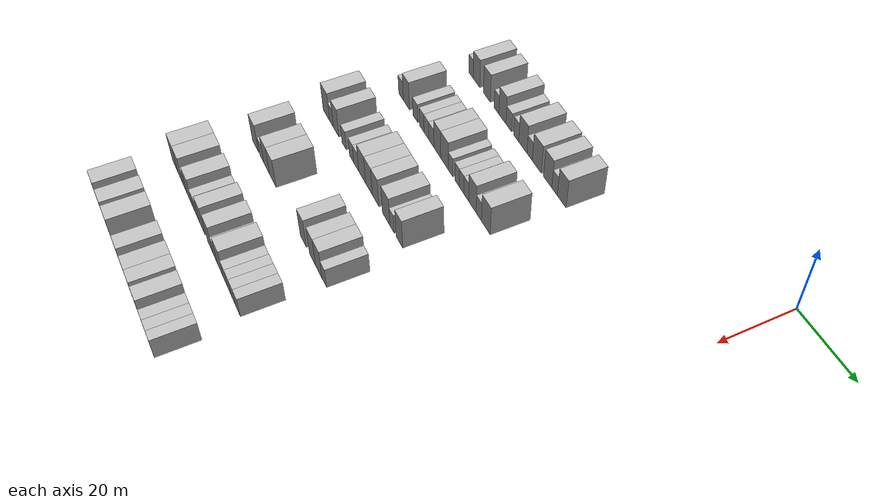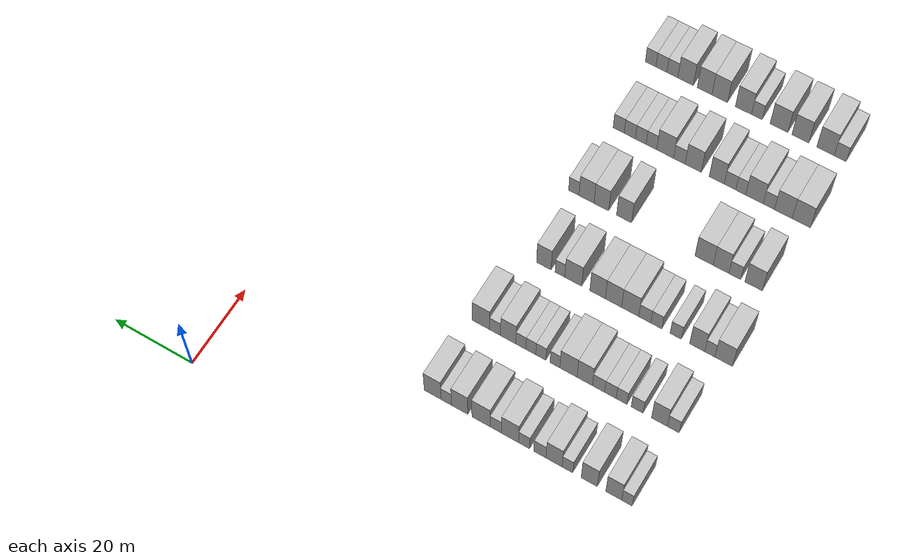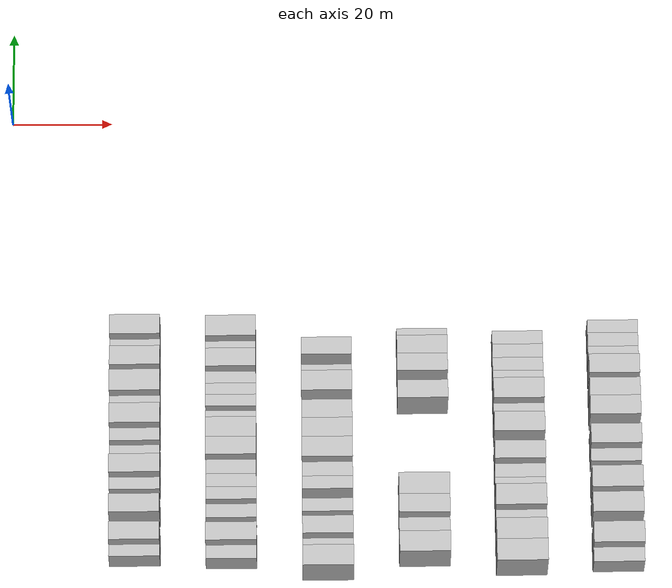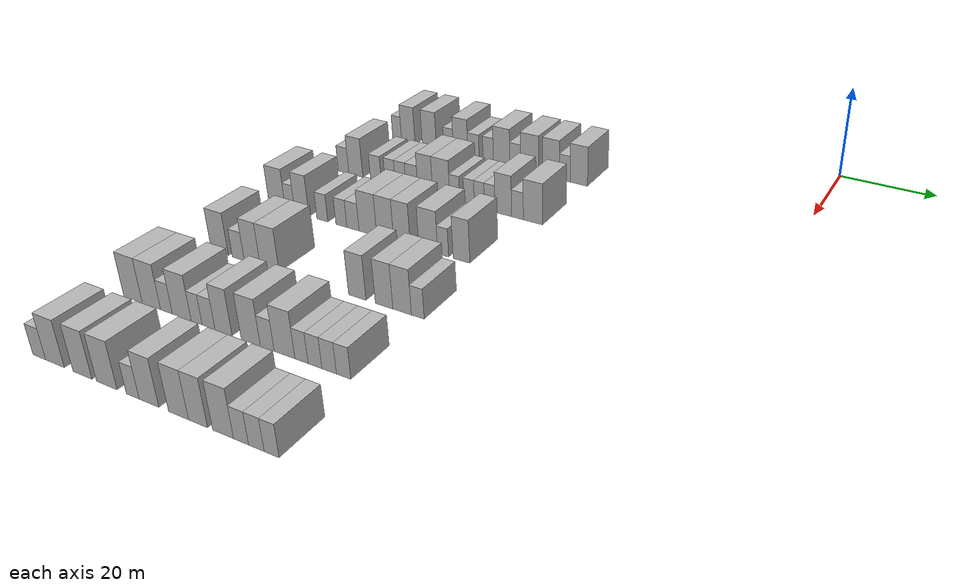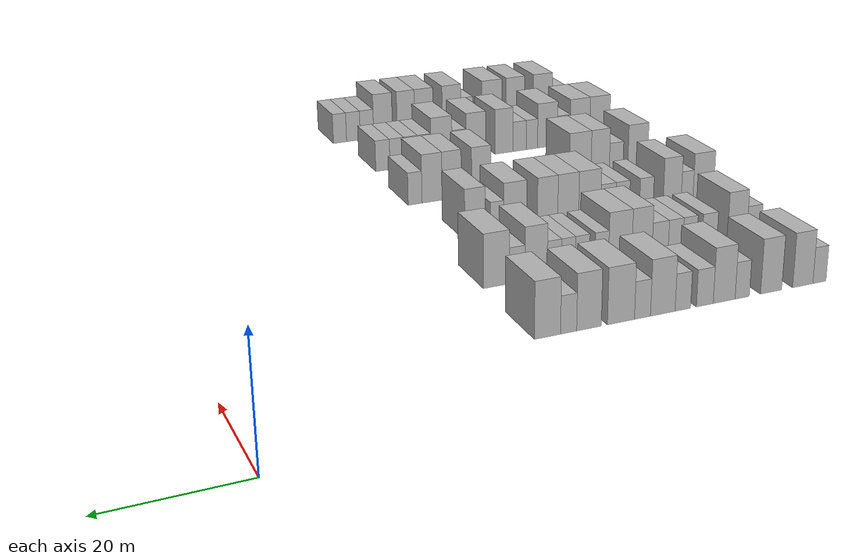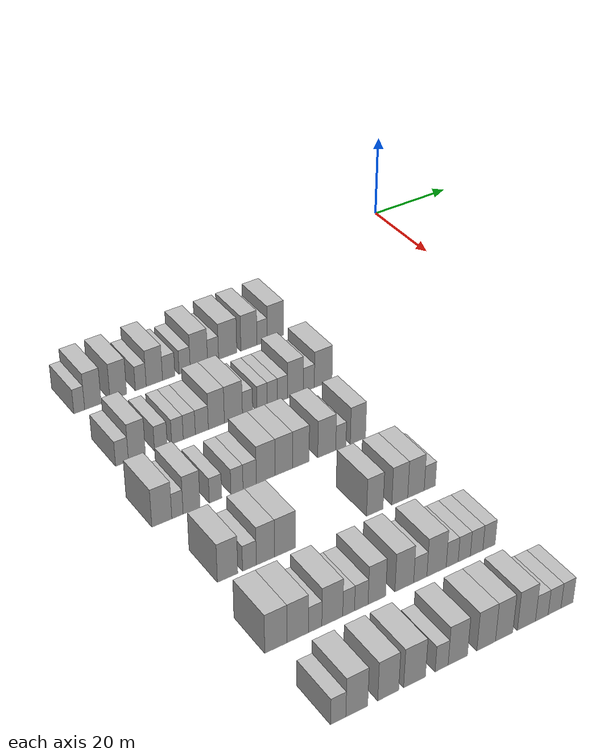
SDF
<sdf version="1.6">
 <world name="default">
  <model name="building_62">
   <static>1</static>
   <pose>25.0000 -94.1520 0 0.000000 0.000000 0.000000</pose>
   <link name="link">
    <pose>0 0 3.00 0 0 0</pose>
    <collision name="collision"><geometry><box><size>10.0000 2.4363 6.0000</size></box></geometry></collision>
    <visual name="visual">
     <cast_shadows>0</cast_shadows>
     <geometry><box><size>10.0000 2.4363 6.0000</size></box></geometry>
     <material>
      <script>
       <uri>model://HANNAS_wall/materials/scripts</uri>
       <uri>model://HANNAS_wall/materials/textures</uri>
       <name>vrc/HANNAS_wall</name>
      </script>
     </material>
    </visual>
   </link>
  </model>
  <model name="building_63">
   <static>1</static>
   <pose>25.0000 -91.0666 0 0.000000 0.000000 0.000000</pose>
   <link name="link">
    <pose>0 0 4.50 0 0 0</pose>
    <collision name="collision"><geometry><box><size>10.0000 3.7346 9.0000</size></box></geometry></collision>
    <visual name="visual">
     <cast_shadows>0</cast_shadows>
     <geometry><box><size>10.0000 3.7346 9.0000</size></box></geometry>
     <material>
      <script>
       <uri>model://HANNAS_wall/materials/scripts</uri>
       <uri>model://HANNAS_wall/materials/textures</uri>
       <name>vrc/HANNAS_wall</name>
      </script>
     </material>
    </visual>
   </link>
  </model>
  <model name="building_64">
   <static>1</static>
   <pose>25.0000 -85.2861 0 0.000000 0.000000 0.000000</pose>
   <link name="link">
    <pose>0 0 4.50 0 0 0</pose>
    <collision name="collision"><geometry><box><size>10.0000 3.8263 9.0000</size></box></geometry></collision>
    <visual name="visual">
     <cast_shadows>0</cast_shadows>
     <geometry><box><size>10.0000 3.8263 9.0000</size></box></geometry>
     <material>
      <script>
       <uri>model://HANNAS_wall/materials/scripts</uri>
       <uri>model://HANNAS_wall/materials/textures</uri>
       <name>vrc/HANNAS_wall</name>
      </script>
     </material>
    </visual>
   </link>
  </model>
  <model name="building_65">
   <static>1</static>
   <pose>25.0000 -80.1051 0 0.000000 0.000000 0.000000</pose>
   <link name="link">
    <pose>0 0 3.00 0 0 0</pose>
    <collision name="collision"><geometry><box><size>10.0000 2.5358 6.0000</size></box></geometry></collision>
    <visual name="visual">
     <cast_shadows>0</cast_shadows>
     <geometry><box><size>10.0000 2.5358 6.0000</size></box></geometry>
     <material>
      <script>
       <uri>model://HANNAS_wall/materials/scripts</uri>
       <uri>model://HANNAS_wall/materials/textures</uri>
       <name>vrc/HANNAS_wall</name>
      </script>
     </material>
    </visual>
   </link>
  </model>
  <model name="building_66">
   <static>1</static>
   <pose>25.0000 -76.9200 0 0.000000 0.000000 0.000000</pose>
   <link name="link">
    <pose>0 0 4.50 0 0 0</pose>
    <collision name="collision"><geometry><box><size>10.0000 3.8344 9.0000</size></box></geometry></collision>
    <visual name="visual">
     <cast_shadows>0</cast_shadows>
     <geometry><box><size>10.0000 3.8344 9.0000</size></box></geometry>
     <material>
      <script>
       <uri>model://HANNAS_wall/materials/scripts</uri>
       <uri>model://HANNAS_wall/materials/textures</uri>
       <name>vrc/HANNAS_wall</name>
      </script>
     </material>
    </visual>
   </link>
  </model>
  <model name="building_67">
   <static>1</static>
   <pose>25.0000 -73.5407 0 0.000000 0.000000 0.000000</pose>
   <link name="link">
    <pose>0 0 3.00 0 0 0</pose>
    <collision name="collision"><geometry><box><size>10.0000 2.9241 6.0000</size></box></geometry></collision>
    <visual name="visual">
     <cast_shadows>0</cast_shadows>
     <geometry><box><size>10.0000 2.9241 6.0000</size></box></geometry>
     <material>
      <script>
       <uri>model://HANNAS_wall/materials/scripts</uri>
       <uri>model://HANNAS_wall/materials/textures</uri>
       <name>vrc/HANNAS_wall</name>
      </script>
     </material>
    </visual>
   </link>
  </model>
  <model name="building_68">
   <static>1</static>
   <pose>25.0000 -69.7511 0 0.000000 0.000000 0.000000</pose>
   <link name="link">
    <pose>0 0 3.00 0 0 0</pose>
    <collision name="collision"><geometry><box><size>10.0000 2.6551 6.0000</size></box></geometry></collision>
    <visual name="visual">
     <cast_shadows>0</cast_shadows>
     <geometry><box><size>10.0000 2.6551 6.0000</size></box></geometry>
     <material>
      <script>
       <uri>model://HANNAS_wall/materials/scripts</uri>
       <uri>model://HANNAS_wall/materials/textures</uri>
       <name>vrc/HANNAS_wall</name>
      </script>
     </material>
    </visual>
   </link>
  </model>
  <model name="building_69">
   <static>1</static>
   <pose>25.0000 -66.3393 0 0.000000 0.000000 0.000000</pose>
   <link name="link">
    <pose>0 0 4.50 0 0 0</pose>
    <collision name="collision"><geometry><box><size>10.0000 4.1685 9.0000</size></box></geometry></collision>
    <visual name="visual">
     <cast_shadows>0</cast_shadows>
     <geometry><box><size>10.0000 4.1685 9.0000</size></box></geometry>
     <material>
      <script>
       <uri>model://HANNAS_wall/materials/scripts</uri>
       <uri>model://HANNAS_wall/materials/textures</uri>
       <name>vrc/HANNAS_wall</name>
      </script>
     </material>
    </visual>
   </link>
  </model>
  <model name="building_70">
   <static>1</static>
   <pose>25.0000 -62.9199 0 0.000000 0.000000 0.000000</pose>
   <link name="link">
    <pose>0 0 3.00 0 0 0</pose>
    <collision name="collision"><geometry><box><size>10.0000 2.6703 6.0000</size></box></geometry></collision>
    <visual name="visual">
     <cast_shadows>0</cast_shadows>
     <geometry><box><size>10.0000 2.6703 6.0000</size></box></geometry>
     <material>
      <script>
       <uri>model://HANNAS_wall/materials/scripts</uri>
       <uri>model://HANNAS_wall/materials/textures</uri>
       <name>vrc/HANNAS_wall</name>
      </script>
     </material>
    </visual>
   </link>
  </model>
  <model name="building_71">
   <static>1</static>
   <pose>25.0000 -59.3494 0 0.000000 0.000000 0.000000</pose>
   <link name="link">
    <pose>0 0 4.50 0 0 0</pose>
    <collision name="collision"><geometry><box><size>10.0000 4.4707 9.0000</size></box></geometry></collision>
    <visual name="visual">
     <cast_shadows>0</cast_shadows>
     <geometry><box><size>10.0000 4.4707 9.0000</size></box></geometry>
     <material>
      <script>
       <uri>model://HANNAS_wall/materials/scripts</uri>
       <uri>model://HANNAS_wall/materials/textures</uri>
       <name>vrc/HANNAS_wall</name>
      </script>
     </material>
    </visual>
   </link>
  </model>
  <model name="building_72">
   <static>1</static>
   <pose>25.0000 -54.1172 0 0.000000 0.000000 0.000000</pose>
   <link name="link">
    <pose>0 0 4.50 0 0 0</pose>
    <collision name="collision"><geometry><box><size>10.0000 3.9937 9.0000</size></box></geometry></collision>
    <visual name="visual">
     <cast_shadows>0</cast_shadows>
     <geometry><box><size>10.0000 3.9937 9.0000</size></box></geometry>
     <material>
      <script>
       <uri>model://HANNAS_wall/materials/scripts</uri>
       <uri>model://HANNAS_wall/materials/textures</uri>
       <name>vrc/HANNAS_wall</name>
      </script>
     </material>
    </visual>
   </link>
  </model>
  <model name="building_73">
   <static>1</static>
   <pose>25.0000 -50.8327 0 0.000000 0.000000 0.000000</pose>
   <link name="link">
    <pose>0 0 3.00 0 0 0</pose>
    <collision name="collision"><geometry><box><size>10.0000 2.5753 6.0000</size></box></geometry></collision>
    <visual name="visual">
     <cast_shadows>0</cast_shadows>
     <geometry><box><size>10.0000 2.5753 6.0000</size></box></geometry>
     <material>
      <script>
       <uri>model://HANNAS_wall/materials/scripts</uri>
       <uri>model://HANNAS_wall/materials/textures</uri>
       <name>vrc/HANNAS_wall</name>
      </script>
     </material>
    </visual>
   </link>
  </model>
  <model name="building_74">
   <static>1</static>
   <pose>25.0000 -47.4837 0 0.000000 0.000000 0.000000</pose>
   <link name="link">
    <pose>0 0 4.50 0 0 0</pose>
    <collision name="collision"><geometry><box><size>10.0000 4.1226 9.0000</size></box></geometry></collision>
    <visual name="visual">
     <cast_shadows>0</cast_shadows>
     <geometry><box><size>10.0000 4.1226 9.0000</size></box></geometry>
     <material>
      <script>
       <uri>model://HANNAS_wall/materials/scripts</uri>
       <uri>model://HANNAS_wall/materials/textures</uri>
       <name>vrc/HANNAS_wall</name>
      </script>
     </material>
    </visual>
   </link>
  </model>
  <model name="building_228">
   <static>1</static>
   <pose>44.0000 -94.6263 0 0.000000 0.000000 0.000000</pose>
   <link name="link">
    <pose>0 0 3.00 0 0 0</pose>
    <collision name="collision"><geometry><box><size>10.0000 2.8032 6.0000</size></box></geometry></collision>
    <visual name="visual">
     <cast_shadows>0</cast_shadows>
     <geometry><box><size>10.0000 2.8032 6.0000</size></box></geometry>
     <material>
      <script>
       <uri>model://HANNAS_wall/materials/scripts</uri>
       <uri>model://HANNAS_wall/materials/textures</uri>
       <name>vrc/HANNAS_wall</name>
      </script>
     </material>
    </visual>
   </link>
  </model>
  <model name="building_229">
   <static>1</static>
   <pose>44.0000 -91.3469 0 0.000000 0.000000 0.000000</pose>
   <link name="link">
    <pose>0 0 4.50 0 0 0</pose>
    <collision name="collision"><geometry><box><size>10.0000 3.7555 9.0000</size></box></geometry></collision>
    <visual name="visual">
     <cast_shadows>0</cast_shadows>
     <geometry><box><size>10.0000 3.7555 9.0000</size></box></geometry>
     <material>
      <script>
       <uri>model://HANNAS_wall/materials/scripts</uri>
       <uri>model://HANNAS_wall/materials/textures</uri>
       <name>vrc/HANNAS_wall</name>
      </script>
     </material>
    </visual>
   </link>
  </model>
  <model name="building_230">
   <static>1</static>
   <pose>44.0000 -86.0438 0 0.000000 0.000000 0.000000</pose>
   <link name="link">
    <pose>0 0 3.00 0 0 0</pose>
    <collision name="collision"><geometry><box><size>10.0000 2.8507 6.0000</size></box></geometry></collision>
    <visual name="visual">
     <cast_shadows>0</cast_shadows>
     <geometry><box><size>10.0000 2.8507 6.0000</size></box></geometry>
     <material>
      <script>
       <uri>model://HANNAS_wall/materials/scripts</uri>
       <uri>model://HANNAS_wall/materials/textures</uri>
       <name>vrc/HANNAS_wall</name>
      </script>
     </material>
    </visual>
   </link>
  </model>
  <model name="building_231">
   <static>1</static>
   <pose>44.0000 -82.3161 0 0.000000 0.000000 0.000000</pose>
   <link name="link">
    <pose>0 0 3.00 0 0 0</pose>
    <collision name="collision"><geometry><box><size>10.0000 2.6048 6.0000</size></box></geometry></collision>
    <visual name="visual">
     <cast_shadows>0</cast_shadows>
     <geometry><box><size>10.0000 2.6048 6.0000</size></box></geometry>
     <material>
      <script>
       <uri>model://HANNAS_wall/materials/scripts</uri>
       <uri>model://HANNAS_wall/materials/textures</uri>
       <name>vrc/HANNAS_wall</name>
      </script>
     </material>
    </visual>
   </link>
  </model>
  <model name="building_232">
   <static>1</static>
   <pose>44.0000 -79.6428 0 0.000000 0.000000 0.000000</pose>
   <link name="link">
    <pose>0 0 3.00 0 0 0</pose>
    <collision name="collision"><geometry><box><size>10.0000 2.7419 6.0000</size></box></geometry></collision>
    <visual name="visual">
     <cast_shadows>0</cast_shadows>
     <geometry><box><size>10.0000 2.7419 6.0000</size></box></geometry>
     <material>
      <script>
       <uri>model://HANNAS_wall/materials/scripts</uri>
       <uri>model://HANNAS_wall/materials/textures</uri>
       <name>vrc/HANNAS_wall</name>
      </script>
     </material>
    </visual>
   </link>
  </model>
  <model name="building_233">
   <static>1</static>
   <pose>44.0000 -76.7818 0 0.000000 0.000000 0.000000</pose>
   <link name="link">
    <pose>0 0 3.00 0 0 0</pose>
    <collision name="collision"><geometry><box><size>10.0000 2.9800 6.0000</size></box></geometry></collision>
    <visual name="visual">
     <cast_shadows>0</cast_shadows>
     <geometry><box><size>10.0000 2.9800 6.0000</size></box></geometry>
     <material>
      <script>
       <uri>model://HANNAS_wall/materials/scripts</uri>
       <uri>model://HANNAS_wall/materials/textures</uri>
       <name>vrc/HANNAS_wall</name>
      </script>
     </material>
    </visual>
   </link>
  </model>
  <model name="building_234">
   <static>1</static>
   <pose>44.0000 -73.4351 0 0.000000 0.000000 0.000000</pose>
   <link name="link">
    <pose>0 0 4.50 0 0 0</pose>
    <collision name="collision"><geometry><box><size>10.0000 3.7135 9.0000</size></box></geometry></collision>
    <visual name="visual">
     <cast_shadows>0</cast_shadows>
     <geometry><box><size>10.0000 3.7135 9.0000</size></box></geometry>
     <material>
      <script>
       <uri>model://HANNAS_wall/materials/scripts</uri>
       <uri>model://HANNAS_wall/materials/textures</uri>
       <name>vrc/HANNAS_wall</name>
      </script>
     </material>
    </visual>
   </link>
  </model>
  <model name="building_235">
   <static>1</static>
   <pose>44.0000 -69.4809 0 0.000000 0.000000 0.000000</pose>
   <link name="link">
    <pose>0 0 4.50 0 0 0</pose>
    <collision name="collision"><geometry><box><size>10.0000 4.1949 9.0000</size></box></geometry></collision>
    <visual name="visual">
     <cast_shadows>0</cast_shadows>
     <geometry><box><size>10.0000 4.1949 9.0000</size></box></geometry>
     <material>
      <script>
       <uri>model://HANNAS_wall/materials/scripts</uri>
       <uri>model://HANNAS_wall/materials/textures</uri>
       <name>vrc/HANNAS_wall</name>
      </script>
     </material>
    </visual>
   </link>
  </model>
  <model name="building_236">
   <static>1</static>
   <pose>44.0000 -66.1765 0 0.000000 0.000000 0.000000</pose>
   <link name="link">
    <pose>0 0 3.00 0 0 0</pose>
    <collision name="collision"><geometry><box><size>10.0000 2.4138 6.0000</size></box></geometry></collision>
    <visual name="visual">
     <cast_shadows>0</cast_shadows>
     <geometry><box><size>10.0000 2.4138 6.0000</size></box></geometry>
     <material>
      <script>
       <uri>model://HANNAS_wall/materials/scripts</uri>
       <uri>model://HANNAS_wall/materials/textures</uri>
       <name>vrc/HANNAS_wall</name>
      </script>
     </material>
    </visual>
   </link>
  </model>
  <model name="building_237">
   <static>1</static>
   <pose>44.0000 -62.7341 0 0.000000 0.000000 0.000000</pose>
   <link name="link">
    <pose>0 0 3.00 0 0 0</pose>
    <collision name="collision"><geometry><box><size>10.0000 2.4710 6.0000</size></box></geometry></collision>
    <visual name="visual">
     <cast_shadows>0</cast_shadows>
     <geometry><box><size>10.0000 2.4710 6.0000</size></box></geometry>
     <material>
      <script>
       <uri>model://HANNAS_wall/materials/scripts</uri>
       <uri>model://HANNAS_wall/materials/textures</uri>
       <name>vrc/HANNAS_wall</name>
      </script>
     </material>
    </visual>
   </link>
  </model>
  <model name="building_238">
   <static>1</static>
   <pose>44.0000 -60.2896 0 0.000000 0.000000 0.000000</pose>
   <link name="link">
    <pose>0 0 3.00 0 0 0</pose>
    <collision name="collision"><geometry><box><size>10.0000 2.4181 6.0000</size></box></geometry></collision>
    <visual name="visual">
     <cast_shadows>0</cast_shadows>
     <geometry><box><size>10.0000 2.4181 6.0000</size></box></geometry>
     <material>
      <script>
       <uri>model://HANNAS_wall/materials/scripts</uri>
       <uri>model://HANNAS_wall/materials/textures</uri>
       <name>vrc/HANNAS_wall</name>
      </script>
     </material>
    </visual>
   </link>
  </model>
  <model name="building_239">
   <static>1</static>
   <pose>44.0000 -57.8400 0 0.000000 0.000000 0.000000</pose>
   <link name="link">
    <pose>0 0 3.00 0 0 0</pose>
    <collision name="collision"><geometry><box><size>10.0000 2.4811 6.0000</size></box></geometry></collision>
    <visual name="visual">
     <cast_shadows>0</cast_shadows>
     <geometry><box><size>10.0000 2.4811 6.0000</size></box></geometry>
     <material>
      <script>
       <uri>model://HANNAS_wall/materials/scripts</uri>
       <uri>model://HANNAS_wall/materials/textures</uri>
       <name>vrc/HANNAS_wall</name>
      </script>
     </material>
    </visual>
   </link>
  </model>
  <model name="building_240">
   <static>1</static>
   <pose>44.0000 -54.6894 0 0.000000 0.000000 0.000000</pose>
   <link name="link">
    <pose>0 0 4.50 0 0 0</pose>
    <collision name="collision"><geometry><box><size>10.0000 3.8200 9.0000</size></box></geometry></collision>
    <visual name="visual">
     <cast_shadows>0</cast_shadows>
     <geometry><box><size>10.0000 3.8200 9.0000</size></box></geometry>
     <material>
      <script>
       <uri>model://HANNAS_wall/materials/scripts</uri>
       <uri>model://HANNAS_wall/materials/textures</uri>
       <name>vrc/HANNAS_wall</name>
      </script>
     </material>
    </visual>
   </link>
  </model>
  <model name="building_241">
   <static>1</static>
   <pose>44.0000 -51.4509 0 0.000000 0.000000 0.000000</pose>
   <link name="link">
    <pose>0 0 3.00 0 0 0</pose>
    <collision name="collision"><geometry><box><size>10.0000 2.6572 6.0000</size></box></geometry></collision>
    <visual name="visual">
     <cast_shadows>0</cast_shadows>
     <geometry><box><size>10.0000 2.6572 6.0000</size></box></geometry>
     <material>
      <script>
       <uri>model://HANNAS_wall/materials/scripts</uri>
       <uri>model://HANNAS_wall/materials/textures</uri>
       <name>vrc/HANNAS_wall</name>
      </script>
     </material>
    </visual>
   </link>
  </model>
  <model name="building_242">
   <static>1</static>
   <pose>44.0000 -47.9327 0 0.000000 0.000000 0.000000</pose>
   <link name="link">
    <pose>0 0 4.50 0 0 0</pose>
    <collision name="collision"><geometry><box><size>10.0000 4.3792 9.0000</size></box></geometry></collision>
    <visual name="visual">
     <cast_shadows>0</cast_shadows>
     <geometry><box><size>10.0000 4.3792 9.0000</size></box></geometry>
     <material>
      <script>
       <uri>model://HANNAS_wall/materials/scripts</uri>
       <uri>model://HANNAS_wall/materials/textures</uri>
       <name>vrc/HANNAS_wall</name>
      </script>
     </material>
    </visual>
   </link>
  </model>
  <model name="building_401">
   <static>1</static>
   <pose>63.0000 -96.4843 0 0.000000 0.000000 0.000000</pose>
   <link name="link">
    <pose>0 0 4.50 0 0 0</pose>
    <collision name="collision"><geometry><box><size>10.0000 4.2229 9.0000</size></box></geometry></collision>
    <visual name="visual">
     <cast_shadows>0</cast_shadows>
     <geometry><box><size>10.0000 4.2229 9.0000</size></box></geometry>
     <material>
      <script>
       <uri>model://HANNAS_wall/materials/scripts</uri>
       <uri>model://HANNAS_wall/materials/textures</uri>
       <name>vrc/HANNAS_wall</name>
      </script>
     </material>
    </visual>
   </link>
  </model>
  <model name="building_402">
   <static>1</static>
   <pose>63.0000 -93.1680 0 0.000000 0.000000 0.000000</pose>
   <link name="link">
    <pose>0 0 3.00 0 0 0</pose>
    <collision name="collision"><geometry><box><size>10.0000 2.4097 6.0000</size></box></geometry></collision>
    <visual name="visual">
     <cast_shadows>0</cast_shadows>
     <geometry><box><size>10.0000 2.4097 6.0000</size></box></geometry>
     <material>
      <script>
       <uri>model://HANNAS_wall/materials/scripts</uri>
       <uri>model://HANNAS_wall/materials/textures</uri>
       <name>vrc/HANNAS_wall</name>
      </script>
     </material>
    </visual>
   </link>
  </model>
  <model name="building_403">
   <static>1</static>
   <pose>63.0000 -90.1338 0 0.000000 0.000000 0.000000</pose>
   <link name="link">
    <pose>0 0 4.50 0 0 0</pose>
    <collision name="collision"><geometry><box><size>10.0000 3.6586 9.0000</size></box></geometry></collision>
    <visual name="visual">
     <cast_shadows>0</cast_shadows>
     <geometry><box><size>10.0000 3.6586 9.0000</size></box></geometry>
     <material>
      <script>
       <uri>model://HANNAS_wall/materials/scripts</uri>
       <uri>model://HANNAS_wall/materials/textures</uri>
       <name>vrc/HANNAS_wall</name>
      </script>
     </material>
    </visual>
   </link>
  </model>
  <model name="building_404">
   <static>1</static>
   <pose>63.0000 -84.9426 0 0.000000 0.000000 0.000000</pose>
   <link name="link">
    <pose>0 0 3.00 0 0 0</pose>
    <collision name="collision"><geometry><box><size>10.0000 2.7238 6.0000</size></box></geometry></collision>
    <visual name="visual">
     <cast_shadows>0</cast_shadows>
     <geometry><box><size>10.0000 2.7238 6.0000</size></box></geometry>
     <material>
      <script>
       <uri>model://HANNAS_wall/materials/scripts</uri>
       <uri>model://HANNAS_wall/materials/textures</uri>
       <name>vrc/HANNAS_wall</name>
      </script>
     </material>
    </visual>
   </link>
  </model>
  <model name="building_405">
   <static>1</static>
   <pose>63.0000 -80.2427 0 0.000000 0.000000 0.000000</pose>
   <link name="link">
    <pose>0 0 3.00 0 0 0</pose>
    <collision name="collision"><geometry><box><size>10.0000 2.6760 6.0000</size></box></geometry></collision>
    <visual name="visual">
     <cast_shadows>0</cast_shadows>
     <geometry><box><size>10.0000 2.6760 6.0000</size></box></geometry>
     <material>
      <script>
       <uri>model://HANNAS_wall/materials/scripts</uri>
       <uri>model://HANNAS_wall/materials/textures</uri>
       <name>vrc/HANNAS_wall</name>
      </script>
     </material>
    </visual>
   </link>
  </model>
  <model name="building_406">
   <static>1</static>
   <pose>63.0000 -77.4198 0 0.000000 0.000000 0.000000</pose>
   <link name="link">
    <pose>0 0 3.00 0 0 0</pose>
    <collision name="collision"><geometry><box><size>10.0000 2.9697 6.0000</size></box></geometry></collision>
    <visual name="visual">
     <cast_shadows>0</cast_shadows>
     <geometry><box><size>10.0000 2.9697 6.0000</size></box></geometry>
     <material>
      <script>
       <uri>model://HANNAS_wall/materials/scripts</uri>
       <uri>model://HANNAS_wall/materials/textures</uri>
       <name>vrc/HANNAS_wall</name>
      </script>
     </material>
    </visual>
   </link>
  </model>
  <model name="building_407">
   <static>1</static>
   <pose>63.0000 -73.8275 0 0.000000 0.000000 0.000000</pose>
   <link name="link">
    <pose>0 0 4.50 0 0 0</pose>
    <collision name="collision"><geometry><box><size>10.0000 4.2148 9.0000</size></box></geometry></collision>
    <visual name="visual">
     <cast_shadows>0</cast_shadows>
     <geometry><box><size>10.0000 4.2148 9.0000</size></box></geometry>
     <material>
      <script>
       <uri>model://HANNAS_wall/materials/scripts</uri>
       <uri>model://HANNAS_wall/materials/textures</uri>
       <name>vrc/HANNAS_wall</name>
      </script>
     </material>
    </visual>
   </link>
  </model>
  <model name="building_408">
   <static>1</static>
   <pose>63.0000 -69.7227 0 0.000000 0.000000 0.000000</pose>
   <link name="link">
    <pose>0 0 4.50 0 0 0</pose>
    <collision name="collision"><geometry><box><size>10.0000 3.9948 9.0000</size></box></geometry></collision>
    <visual name="visual">
     <cast_shadows>0</cast_shadows>
     <geometry><box><size>10.0000 3.9948 9.0000</size></box></geometry>
     <material>
      <script>
       <uri>model://HANNAS_wall/materials/scripts</uri>
       <uri>model://HANNAS_wall/materials/textures</uri>
       <name>vrc/HANNAS_wall</name>
      </script>
     </material>
    </visual>
   </link>
  </model>
  <model name="building_409">
   <static>1</static>
   <pose>63.0000 -65.8139 0 0.000000 0.000000 0.000000</pose>
   <link name="link">
    <pose>0 0 4.50 0 0 0</pose>
    <collision name="collision"><geometry><box><size>10.0000 3.8230 9.0000</size></box></geometry></collision>
    <visual name="visual">
     <cast_shadows>0</cast_shadows>
     <geometry><box><size>10.0000 3.8230 9.0000</size></box></geometry>
     <material>
      <script>
       <uri>model://HANNAS_wall/materials/scripts</uri>
       <uri>model://HANNAS_wall/materials/textures</uri>
       <name>vrc/HANNAS_wall</name>
      </script>
     </material>
    </visual>
   </link>
  </model>
  <model name="building_410">
   <static>1</static>
   <pose>63.0000 -59.7972 0 0.000000 0.000000 0.000000</pose>
   <link name="link">
    <pose>0 0 4.50 0 0 0</pose>
    <collision name="collision"><geometry><box><size>10.0000 4.2103 9.0000</size></box></geometry></collision>
    <visual name="visual">
     <cast_shadows>0</cast_shadows>
     <geometry><box><size>10.0000 4.2103 9.0000</size></box></geometry>
     <material>
      <script>
       <uri>model://HANNAS_wall/materials/scripts</uri>
       <uri>model://HANNAS_wall/materials/textures</uri>
       <name>vrc/HANNAS_wall</name>
      </script>
     </material>
    </visual>
   </link>
  </model>
  <model name="building_411">
   <static>1</static>
   <pose>63.0000 -56.4817 0 0.000000 0.000000 0.000000</pose>
   <link name="link">
    <pose>0 0 3.00 0 0 0</pose>
    <collision name="collision"><geometry><box><size>10.0000 2.4208 6.0000</size></box></geometry></collision>
    <visual name="visual">
     <cast_shadows>0</cast_shadows>
     <geometry><box><size>10.0000 2.4208 6.0000</size></box></geometry>
     <material>
      <script>
       <uri>model://HANNAS_wall/materials/scripts</uri>
       <uri>model://HANNAS_wall/materials/textures</uri>
       <name>vrc/HANNAS_wall</name>
      </script>
     </material>
    </visual>
   </link>
  </model>
  <model name="building_412">
   <static>1</static>
   <pose>63.0000 -52.4476 0 0.000000 0.000000 0.000000</pose>
   <link name="link">
    <pose>0 0 4.50 0 0 0</pose>
    <collision name="collision"><geometry><box><size>10.0000 3.6476 9.0000</size></box></geometry></collision>
    <visual name="visual">
     <cast_shadows>0</cast_shadows>
     <geometry><box><size>10.0000 3.6476 9.0000</size></box></geometry>
     <material>
      <script>
       <uri>model://HANNAS_wall/materials/scripts</uri>
       <uri>model://HANNAS_wall/materials/textures</uri>
       <name>vrc/HANNAS_wall</name>
      </script>
     </material>
    </visual>
   </link>
  </model>
  <model name="building_573">
   <static>1</static>
   <pose>82.0000 -93.7773 0 0.000000 0.000000 0.000000</pose>
   <link name="link">
    <pose>0 0 4.50 0 0 0</pose>
    <collision name="collision"><geometry><box><size>10.0000 4.2342 9.0000</size></box></geometry></collision>
    <visual name="visual">
     <cast_shadows>0</cast_shadows>
     <geometry><box><size>10.0000 4.2342 9.0000</size></box></geometry>
     <material>
      <script>
       <uri>model://HANNAS_wall/materials/scripts</uri>
       <uri>model://HANNAS_wall/materials/textures</uri>
       <name>vrc/HANNAS_wall</name>
      </script>
     </material>
    </visual>
   </link>
  </model>
  <model name="building_574">
   <static>1</static>
   <pose>82.0000 -89.2112 0 0.000000 0.000000 0.000000</pose>
   <link name="link">
    <pose>0 0 3.00 0 0 0</pose>
    <collision name="collision"><geometry><box><size>10.0000 2.8981 6.0000</size></box></geometry></collision>
    <visual name="visual">
     <cast_shadows>0</cast_shadows>
     <geometry><box><size>10.0000 2.8981 6.0000</size></box></geometry>
     <material>
      <script>
       <uri>model://HANNAS_wall/materials/scripts</uri>
       <uri>model://HANNAS_wall/materials/textures</uri>
       <name>vrc/HANNAS_wall</name>
      </script>
     </material>
    </visual>
   </link>
  </model>
  <model name="building_575">
   <static>1</static>
   <pose>82.0000 -85.8382 0 0.000000 0.000000 0.000000</pose>
   <link name="link">
    <pose>0 0 4.50 0 0 0</pose>
    <collision name="collision"><geometry><box><size>10.0000 3.8478 9.0000</size></box></geometry></collision>
    <visual name="visual">
     <cast_shadows>0</cast_shadows>
     <geometry><box><size>10.0000 3.8478 9.0000</size></box></geometry>
     <material>
      <script>
       <uri>model://HANNAS_wall/materials/scripts</uri>
       <uri>model://HANNAS_wall/materials/textures</uri>
       <name>vrc/HANNAS_wall</name>
      </script>
     </material>
    </visual>
   </link>
  </model>
  <model name="building_576">
   <static>1</static>
   <pose>82.0000 -81.6765 0 0.000000 0.000000 0.000000</pose>
   <link name="link">
    <pose>0 0 4.50 0 0 0</pose>
    <collision name="collision"><geometry><box><size>10.0000 4.4756 9.0000</size></box></geometry></collision>
    <visual name="visual">
     <cast_shadows>0</cast_shadows>
     <geometry><box><size>10.0000 4.4756 9.0000</size></box></geometry>
     <material>
      <script>
       <uri>model://HANNAS_wall/materials/scripts</uri>
       <uri>model://HANNAS_wall/materials/textures</uri>
       <name>vrc/HANNAS_wall</name>
      </script>
     </material>
    </visual>
   </link>
  </model>
  <model name="building_577">
   <static>1</static>
   <pose>82.0000 -61.7908 0 0.000000 0.000000 0.000000</pose>
   <link name="link">
    <pose>0 0 4.50 0 0 0</pose>
    <collision name="collision"><geometry><box><size>10.0000 3.7653 9.0000</size></box></geometry></collision>
    <visual name="visual">
     <cast_shadows>0</cast_shadows>
     <geometry><box><size>10.0000 3.7653 9.0000</size></box></geometry>
     <material>
      <script>
       <uri>model://HANNAS_wall/materials/scripts</uri>
       <uri>model://HANNAS_wall/materials/textures</uri>
       <name>vrc/HANNAS_wall</name>
      </script>
     </material>
    </visual>
   </link>
  </model>
  <model name="building_578">
   <static>1</static>
   <pose>82.0000 -56.0667 0 0.000000 0.000000 0.000000</pose>
   <link name="link">
    <pose>0 0 4.50 0 0 0</pose>
    <collision name="collision"><geometry><box><size>10.0000 3.6829 9.0000</size></box></geometry></collision>
    <visual name="visual">
     <cast_shadows>0</cast_shadows>
     <geometry><box><size>10.0000 3.6829 9.0000</size></box></geometry>
     <material>
      <script>
       <uri>model://HANNAS_wall/materials/scripts</uri>
       <uri>model://HANNAS_wall/materials/textures</uri>
       <name>vrc/HANNAS_wall</name>
      </script>
     </material>
    </visual>
   </link>
  </model>
  <model name="building_579">
   <static>1</static>
   <pose>82.0000 -52.3001 0 0.000000 0.000000 0.000000</pose>
   <link name="link">
    <pose>0 0 4.50 0 0 0</pose>
    <collision name="collision"><geometry><box><size>10.0000 3.8504 9.0000</size></box></geometry></collision>
    <visual name="visual">
     <cast_shadows>0</cast_shadows>
     <geometry><box><size>10.0000 3.8504 9.0000</size></box></geometry>
     <material>
      <script>
       <uri>model://HANNAS_wall/materials/scripts</uri>
       <uri>model://HANNAS_wall/materials/textures</uri>
       <name>vrc/HANNAS_wall</name>
      </script>
     </material>
    </visual>
   </link>
  </model>
  <model name="building_580">
   <static>1</static>
   <pose>82.0000 -49.0666 0 0.000000 0.000000 0.000000</pose>
   <link name="link">
    <pose>0 0 3.00 0 0 0</pose>
    <collision name="collision"><geometry><box><size>10.0000 2.6167 6.0000</size></box></geometry></collision>
    <visual name="visual">
     <cast_shadows>0</cast_shadows>
     <geometry><box><size>10.0000 2.6167 6.0000</size></box></geometry>
     <material>
      <script>
       <uri>model://HANNAS_wall/materials/scripts</uri>
       <uri>model://HANNAS_wall/materials/textures</uri>
       <name>vrc/HANNAS_wall</name>
      </script>
     </material>
    </visual>
   </link>
  </model>
  <model name="building_739">
   <static>1</static>
   <pose>101.0000 -95.6965 0 0.000000 0.000000 0.000000</pose>
   <link name="link">
    <pose>0 0 4.50 0 0 0</pose>
    <collision name="collision"><geometry><box><size>10.0000 4.4676 9.0000</size></box></geometry></collision>
    <visual name="visual">
     <cast_shadows>0</cast_shadows>
     <geometry><box><size>10.0000 4.4676 9.0000</size></box></geometry>
     <material>
      <script>
       <uri>model://HANNAS_wall/materials/scripts</uri>
       <uri>model://HANNAS_wall/materials/textures</uri>
       <name>vrc/HANNAS_wall</name>
      </script>
     </material>
    </visual>
   </link>
  </model>
  <model name="building_740">
   <static>1</static>
   <pose>101.0000 -91.2785 0 0.000000 0.000000 0.000000</pose>
   <link name="link">
    <pose>0 0 4.50 0 0 0</pose>
    <collision name="collision"><geometry><box><size>10.0000 4.3685 9.0000</size></box></geometry></collision>
    <visual name="visual">
     <cast_shadows>0</cast_shadows>
     <geometry><box><size>10.0000 4.3685 9.0000</size></box></geometry>
     <material>
      <script>
       <uri>model://HANNAS_wall/materials/scripts</uri>
       <uri>model://HANNAS_wall/materials/textures</uri>
       <name>vrc/HANNAS_wall</name>
      </script>
     </material>
    </visual>
   </link>
  </model>
  <model name="building_741">
   <static>1</static>
   <pose>101.0000 -87.7140 0 0.000000 0.000000 0.000000</pose>
   <link name="link">
    <pose>0 0 3.00 0 0 0</pose>
    <collision name="collision"><geometry><box><size>10.0000 2.7604 6.0000</size></box></geometry></collision>
    <visual name="visual">
     <cast_shadows>0</cast_shadows>
     <geometry><box><size>10.0000 2.7604 6.0000</size></box></geometry>
     <material>
      <script>
       <uri>model://HANNAS_wall/materials/scripts</uri>
       <uri>model://HANNAS_wall/materials/textures</uri>
       <name>vrc/HANNAS_wall</name>
      </script>
     </material>
    </visual>
   </link>
  </model>
  <model name="building_742">
   <static>1</static>
   <pose>101.0000 -84.1563 0 0.000000 0.000000 0.000000</pose>
   <link name="link">
    <pose>0 0 4.50 0 0 0</pose>
    <collision name="collision"><geometry><box><size>10.0000 4.3548 9.0000</size></box></geometry></collision>
    <visual name="visual">
     <cast_shadows>0</cast_shadows>
     <geometry><box><size>10.0000 4.3548 9.0000</size></box></geometry>
     <material>
      <script>
       <uri>model://HANNAS_wall/materials/scripts</uri>
       <uri>model://HANNAS_wall/materials/textures</uri>
       <name>vrc/HANNAS_wall</name>
      </script>
     </material>
    </visual>
   </link>
  </model>
  <model name="building_743">
   <static>1</static>
   <pose>101.0000 -80.7460 0 0.000000 0.000000 0.000000</pose>
   <link name="link">
    <pose>0 0 3.00 0 0 0</pose>
    <collision name="collision"><geometry><box><size>10.0000 2.4659 6.0000</size></box></geometry></collision>
    <visual name="visual">
     <cast_shadows>0</cast_shadows>
     <geometry><box><size>10.0000 2.4659 6.0000</size></box></geometry>
     <material>
      <script>
       <uri>model://HANNAS_wall/materials/scripts</uri>
       <uri>model://HANNAS_wall/materials/textures</uri>
       <name>vrc/HANNAS_wall</name>
      </script>
     </material>
    </visual>
   </link>
  </model>
  <model name="building_744">
   <static>1</static>
   <pose>101.0000 -78.0761 0 0.000000 0.000000 0.000000</pose>
   <link name="link">
    <pose>0 0 3.00 0 0 0</pose>
    <collision name="collision"><geometry><box><size>10.0000 2.8738 6.0000</size></box></geometry></collision>
    <visual name="visual">
     <cast_shadows>0</cast_shadows>
     <geometry><box><size>10.0000 2.8738 6.0000</size></box></geometry>
     <material>
      <script>
       <uri>model://HANNAS_wall/materials/scripts</uri>
       <uri>model://HANNAS_wall/materials/textures</uri>
       <name>vrc/HANNAS_wall</name>
      </script>
     </material>
    </visual>
   </link>
  </model>
  <model name="building_745">
   <static>1</static>
   <pose>101.0000 -74.7536 0 0.000000 0.000000 0.000000</pose>
   <link name="link">
    <pose>0 0 4.50 0 0 0</pose>
    <collision name="collision"><geometry><box><size>10.0000 3.7711 9.0000</size></box></geometry></collision>
    <visual name="visual">
     <cast_shadows>0</cast_shadows>
     <geometry><box><size>10.0000 3.7711 9.0000</size></box></geometry>
     <material>
      <script>
       <uri>model://HANNAS_wall/materials/scripts</uri>
       <uri>model://HANNAS_wall/materials/textures</uri>
       <name>vrc/HANNAS_wall</name>
      </script>
     </material>
    </visual>
   </link>
  </model>
  <model name="building_746">
   <static>1</static>
   <pose>101.0000 -68.8274 0 0.000000 0.000000 0.000000</pose>
   <link name="link">
    <pose>0 0 4.50 0 0 0</pose>
    <collision name="collision"><geometry><box><size>10.0000 4.0814 9.0000</size></box></geometry></collision>
    <visual name="visual">
     <cast_shadows>0</cast_shadows>
     <geometry><box><size>10.0000 4.0814 9.0000</size></box></geometry>
     <material>
      <script>
       <uri>model://HANNAS_wall/materials/scripts</uri>
       <uri>model://HANNAS_wall/materials/textures</uri>
       <name>vrc/HANNAS_wall</name>
      </script>
     </material>
    </visual>
   </link>
  </model>
  <model name="building_747">
   <static>1</static>
   <pose>101.0000 -65.3310 0 0.000000 0.000000 0.000000</pose>
   <link name="link">
    <pose>0 0 3.00 0 0 0</pose>
    <collision name="collision"><geometry><box><size>10.0000 2.9115 6.0000</size></box></geometry></collision>
    <visual name="visual">
     <cast_shadows>0</cast_shadows>
     <geometry><box><size>10.0000 2.9115 6.0000</size></box></geometry>
     <material>
      <script>
       <uri>model://HANNAS_wall/materials/scripts</uri>
       <uri>model://HANNAS_wall/materials/textures</uri>
       <name>vrc/HANNAS_wall</name>
      </script>
     </material>
    </visual>
   </link>
  </model>
  <model name="building_748">
   <static>1</static>
   <pose>101.0000 -61.7265 0 0.000000 0.000000 0.000000</pose>
   <link name="link">
    <pose>0 0 4.50 0 0 0</pose>
    <collision name="collision"><geometry><box><size>10.0000 4.2976 9.0000</size></box></geometry></collision>
    <visual name="visual">
     <cast_shadows>0</cast_shadows>
     <geometry><box><size>10.0000 4.2976 9.0000</size></box></geometry>
     <material>
      <script>
       <uri>model://HANNAS_wall/materials/scripts</uri>
       <uri>model://HANNAS_wall/materials/textures</uri>
       <name>vrc/HANNAS_wall</name>
      </script>
     </material>
    </visual>
   </link>
  </model>
  <model name="building_749">
   <static>1</static>
   <pose>101.0000 -58.2346 0 0.000000 0.000000 0.000000</pose>
   <link name="link">
    <pose>0 0 3.00 0 0 0</pose>
    <collision name="collision"><geometry><box><size>10.0000 2.6862 6.0000</size></box></geometry></collision>
    <visual name="visual">
     <cast_shadows>0</cast_shadows>
     <geometry><box><size>10.0000 2.6862 6.0000</size></box></geometry>
     <material>
      <script>
       <uri>model://HANNAS_wall/materials/scripts</uri>
       <uri>model://HANNAS_wall/materials/textures</uri>
       <name>vrc/HANNAS_wall</name>
      </script>
     </material>
    </visual>
   </link>
  </model>
  <model name="building_750">
   <static>1</static>
   <pose>101.0000 -55.5076 0 0.000000 0.000000 0.000000</pose>
   <link name="link">
    <pose>0 0 3.00 0 0 0</pose>
    <collision name="collision"><geometry><box><size>10.0000 2.7679 6.0000</size></box></geometry></collision>
    <visual name="visual">
     <cast_shadows>0</cast_shadows>
     <geometry><box><size>10.0000 2.7679 6.0000</size></box></geometry>
     <material>
      <script>
       <uri>model://HANNAS_wall/materials/scripts</uri>
       <uri>model://HANNAS_wall/materials/textures</uri>
       <name>vrc/HANNAS_wall</name>
      </script>
     </material>
    </visual>
   </link>
  </model>
  <model name="building_751">
   <static>1</static>
   <pose>101.0000 -52.6900 0 0.000000 0.000000 0.000000</pose>
   <link name="link">
    <pose>0 0 3.00 0 0 0</pose>
    <collision name="collision"><geometry><box><size>10.0000 2.8672 6.0000</size></box></geometry></collision>
    <visual name="visual">
     <cast_shadows>0</cast_shadows>
     <geometry><box><size>10.0000 2.8672 6.0000</size></box></geometry>
     <material>
      <script>
       <uri>model://HANNAS_wall/materials/scripts</uri>
       <uri>model://HANNAS_wall/materials/textures</uri>
       <name>vrc/HANNAS_wall</name>
      </script>
     </material>
    </visual>
   </link>
  </model>
  <model name="building_752">
   <static>1</static>
   <pose>101.0000 -49.8475 0 0.000000 0.000000 0.000000</pose>
   <link name="link">
    <pose>0 0 3.00 0 0 0</pose>
    <collision name="collision"><geometry><box><size>10.0000 2.8179 6.0000</size></box></geometry></collision>
    <visual name="visual">
     <cast_shadows>0</cast_shadows>
     <geometry><box><size>10.0000 2.8179 6.0000</size></box></geometry>
     <material>
      <script>
       <uri>model://HANNAS_wall/materials/scripts</uri>
       <uri>model://HANNAS_wall/materials/textures</uri>
       <name>vrc/HANNAS_wall</name>
      </script>
     </material>
    </visual>
   </link>
  </model>
  <model name="building_920">
   <static>1</static>
   <pose>120.0000 -95.8379 0 0.000000 0.000000 0.000000</pose>
   <link name="link">
    <pose>0 0 3.00 0 0 0</pose>
    <collision name="collision"><geometry><box><size>10.0000 2.9791 6.0000</size></box></geometry></collision>
    <visual name="visual">
     <cast_shadows>0</cast_shadows>
     <geometry><box><size>10.0000 2.9791 6.0000</size></box></geometry>
     <material>
      <script>
       <uri>model://HANNAS_wall/materials/scripts</uri>
       <uri>model://HANNAS_wall/materials/textures</uri>
       <name>vrc/HANNAS_wall</name>
      </script>
     </material>
    </visual>
   </link>
  </model>
  <model name="building_921">
   <static>1</static>
   <pose>120.0000 -92.1791 0 0.000000 0.000000 0.000000</pose>
   <link name="link">
    <pose>0 0 4.50 0 0 0</pose>
    <collision name="collision"><geometry><box><size>10.0000 4.3385 9.0000</size></box></geometry></collision>
    <visual name="visual">
     <cast_shadows>0</cast_shadows>
     <geometry><box><size>10.0000 4.3385 9.0000</size></box></geometry>
     <material>
      <script>
       <uri>model://HANNAS_wall/materials/scripts</uri>
       <uri>model://HANNAS_wall/materials/textures</uri>
       <name>vrc/HANNAS_wall</name>
      </script>
     </material>
    </visual>
   </link>
  </model>
  <model name="building_922">
   <static>1</static>
   <pose>120.0000 -85.8965 0 0.000000 0.000000 0.000000</pose>
   <link name="link">
    <pose>0 0 4.50 0 0 0</pose>
    <collision name="collision"><geometry><box><size>10.0000 4.2266 9.0000</size></box></geometry></collision>
    <visual name="visual">
     <cast_shadows>0</cast_shadows>
     <geometry><box><size>10.0000 4.2266 9.0000</size></box></geometry>
     <material>
      <script>
       <uri>model://HANNAS_wall/materials/scripts</uri>
       <uri>model://HANNAS_wall/materials/textures</uri>
       <name>vrc/HANNAS_wall</name>
      </script>
     </material>
    </visual>
   </link>
  </model>
  <model name="building_923">
   <static>1</static>
   <pose>120.0000 -80.5376 0 0.000000 0.000000 0.000000</pose>
   <link name="link">
    <pose>0 0 4.50 0 0 0</pose>
    <collision name="collision"><geometry><box><size>10.0000 4.4912 9.0000</size></box></geometry></collision>
    <visual name="visual">
     <cast_shadows>0</cast_shadows>
     <geometry><box><size>10.0000 4.4912 9.0000</size></box></geometry>
     <material>
      <script>
       <uri>model://HANNAS_wall/materials/scripts</uri>
       <uri>model://HANNAS_wall/materials/textures</uri>
       <name>vrc/HANNAS_wall</name>
      </script>
     </material>
    </visual>
   </link>
  </model>
  <model name="building_924">
   <static>1</static>
   <pose>120.0000 -74.9375 0 0.000000 0.000000 0.000000</pose>
   <link name="link">
    <pose>0 0 3.00 0 0 0</pose>
    <collision name="collision"><geometry><box><size>10.0000 2.7091 6.0000</size></box></geometry></collision>
    <visual name="visual">
     <cast_shadows>0</cast_shadows>
     <geometry><box><size>10.0000 2.7091 6.0000</size></box></geometry>
     <material>
      <script>
       <uri>model://HANNAS_wall/materials/scripts</uri>
       <uri>model://HANNAS_wall/materials/textures</uri>
       <name>vrc/HANNAS_wall</name>
      </script>
     </material>
    </visual>
   </link>
  </model>
  <model name="building_925">
   <static>1</static>
   <pose>120.0000 -71.5373 0 0.000000 0.000000 0.000000</pose>
   <link name="link">
    <pose>0 0 4.50 0 0 0</pose>
    <collision name="collision"><geometry><box><size>10.0000 4.0912 9.0000</size></box></geometry></collision>
    <visual name="visual">
     <cast_shadows>0</cast_shadows>
     <geometry><box><size>10.0000 4.0912 9.0000</size></box></geometry>
     <material>
      <script>
       <uri>model://HANNAS_wall/materials/scripts</uri>
       <uri>model://HANNAS_wall/materials/textures</uri>
       <name>vrc/HANNAS_wall</name>
      </script>
     </material>
    </visual>
   </link>
  </model>
  <model name="building_926">
   <static>1</static>
   <pose>120.0000 -65.4876 0 0.000000 0.000000 0.000000</pose>
   <link name="link">
    <pose>0 0 4.50 0 0 0</pose>
    <collision name="collision"><geometry><box><size>10.0000 4.0081 9.0000</size></box></geometry></collision>
    <visual name="visual">
     <cast_shadows>0</cast_shadows>
     <geometry><box><size>10.0000 4.0081 9.0000</size></box></geometry>
     <material>
      <script>
       <uri>model://HANNAS_wall/materials/scripts</uri>
       <uri>model://HANNAS_wall/materials/textures</uri>
       <name>vrc/HANNAS_wall</name>
      </script>
     </material>
    </visual>
   </link>
  </model>
  <model name="building_927">
   <static>1</static>
   <pose>120.0000 -61.5958 0 0.000000 0.000000 0.000000</pose>
   <link name="link">
    <pose>0 0 4.50 0 0 0</pose>
    <collision name="collision"><geometry><box><size>10.0000 3.7754 9.0000</size></box></geometry></collision>
    <visual name="visual">
     <cast_shadows>0</cast_shadows>
     <geometry><box><size>10.0000 3.7754 9.0000</size></box></geometry>
     <material>
      <script>
       <uri>model://HANNAS_wall/materials/scripts</uri>
       <uri>model://HANNAS_wall/materials/textures</uri>
       <name>vrc/HANNAS_wall</name>
      </script>
     </material>
    </visual>
   </link>
  </model>
  <model name="building_928">
   <static>1</static>
   <pose>120.0000 -56.7098 0 0.000000 0.000000 0.000000</pose>
   <link name="link">
    <pose>0 0 4.50 0 0 0</pose>
    <collision name="collision"><geometry><box><size>10.0000 3.9966 9.0000</size></box></geometry></collision>
    <visual name="visual">
     <cast_shadows>0</cast_shadows>
     <geometry><box><size>10.0000 3.9966 9.0000</size></box></geometry>
     <material>
      <script>
       <uri>model://HANNAS_wall/materials/scripts</uri>
       <uri>model://HANNAS_wall/materials/textures</uri>
       <name>vrc/HANNAS_wall</name>
      </script>
     </material>
    </visual>
   </link>
  </model>
  <model name="building_929">
   <static>1</static>
   <pose>120.0000 -53.2949 0 0.000000 0.000000 0.000000</pose>
   <link name="link">
    <pose>0 0 3.00 0 0 0</pose>
    <collision name="collision"><geometry><box><size>10.0000 2.8333 6.0000</size></box></geometry></collision>
    <visual name="visual">
     <cast_shadows>0</cast_shadows>
     <geometry><box><size>10.0000 2.8333 6.0000</size></box></geometry>
     <material>
      <script>
       <uri>model://HANNAS_wall/materials/scripts</uri>
       <uri>model://HANNAS_wall/materials/textures</uri>
       <name>vrc/HANNAS_wall</name>
      </script>
     </material>
    </visual>
   </link>
  </model>
  <model name="building_930">
   <static>1</static>
   <pose>120.0000 -50.4352 0 0.000000 0.000000 0.000000</pose>
   <link name="link">
    <pose>0 0 3.00 0 0 0</pose>
    <collision name="collision"><geometry><box><size>10.0000 2.8863 6.0000</size></box></geometry></collision>
    <visual name="visual">
     <cast_shadows>0</cast_shadows>
     <geometry><box><size>10.0000 2.8863 6.0000</size></box></geometry>
     <material>
      <script>
       <uri>model://HANNAS_wall/materials/scripts</uri>
       <uri>model://HANNAS_wall/materials/textures</uri>
       <name>vrc/HANNAS_wall</name>
      </script>
     </material>
    </visual>
   </link>
  </model>
  <model name="building_931">
   <static>1</static>
   <pose>120.0000 -47.6256 0 0.000000 0.000000 0.000000</pose>
   <link name="link">
    <pose>0 0 3.00 0 0 0</pose>
    <collision name="collision"><geometry><box><size>10.0000 2.7329 6.0000</size></box></geometry></collision>
    <visual name="visual">
     <cast_shadows>0</cast_shadows>
     <geometry><box><size>10.0000 2.7329 6.0000</size></box></geometry>
     <material>
      <script>
       <uri>model://HANNAS_wall/materials/scripts</uri>
       <uri>model://HANNAS_wall/materials/textures</uri>
       <name>vrc/HANNAS_wall</name>
      </script>
     </material>
    </visual>
   </link>
  </model>
 </world>
</sdf>
